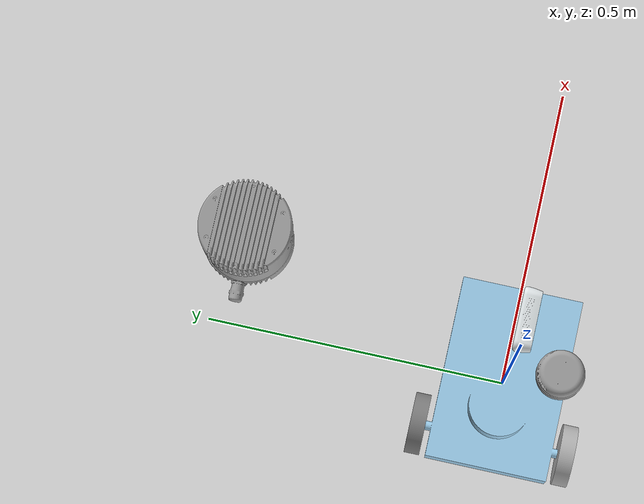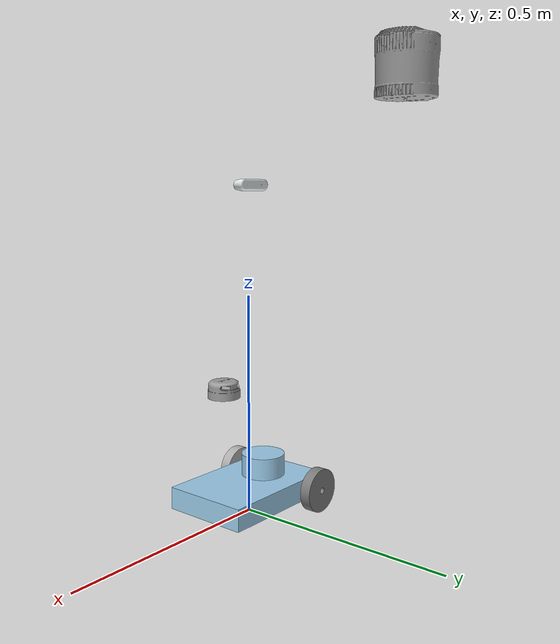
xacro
<?xml version="1.0" ?>
<robot name="wheelbot" xmlns:xacro="http://www.ros.org/wiki/xacro">

<xacro:include filename="$(find wheelbot_description)/urdf/materials.xacro" />
<xacro:include filename="$(find wheelbot_description)/urdf/wheelbot.trans" />
<link name="base_link">
  <inertial>
    <origin xyz="0.00016189497531952227 0.1633444525971556 0.4814496560775765" rpy="0 0 0"/>
    <mass value="59.27638632244937"/>
    <inertia ixx="4.720672" iyy="5.782044" izz="3.655411" ixy="-0.001302" iyz="-0.338954" ixz="0.001314"/>
  </inertial>
  <visual>
    <origin xyz="0 0 0" rpy="0 0 0"/>
    <geometry>
      <mesh filename="package://wheelbot_description/meshes/base_link.stl" scale="0.001 0.001 0.001"/>
    </geometry>
    <material name="opaque157207237"/>
  </visual>
  <collision>
    <origin xyz="0 0 0" rpy="0 0 0"/>
    <geometry>
      <mesh filename="package://wheelbot_description/meshes/base_link.stl" scale="0.001 0.001 0.001"/>
    </geometry>
  </collision>
</link>

<link name="right_wheel_1">
  <inertial>
    <origin xyz="-0.03302712931683613 -8.171934190864816e-07 2.857522727592321e-06" rpy="0 0 0"/>
    <mass value="4.057588262006871"/>
    <inertia ixx="0.018746" iyy="0.010112" izz="0.010112" ixy="0.0" iyz="-0.0" ixz="0.0"/>
  </inertial>
  <visual>
    <origin xyz="0.20365 -0.025 -0.08635" rpy="0 0 0"/>
    <geometry>
      <mesh filename="package://wheelbot_description/meshes/right_wheel_1.stl" scale="0.001 0.001 0.001"/>
    </geometry>
    <material name="silver_default"/>
  </visual>
  <collision>
    <origin xyz="0.20365 -0.025 -0.08635" rpy="0 0 0"/>
    <geometry>
      <mesh filename="package://wheelbot_description/meshes/right_wheel_1.stl" scale="0.001 0.001 0.001"/>
    </geometry>
  </collision>
</link>

<link name="left_wheel_1">
  <inertial>
    <origin xyz="0.03134010792131103 -2.2049547375377343e-06 -2.3096051485343994e-06" rpy="0 0 0"/>
    <mass value="4.057588262006871"/>
    <inertia ixx="0.018746" iyy="0.010179" izz="0.010179" ixy="-0.0" iyz="-0.0" ixz="0.0"/>
  </inertial>
  <visual>
    <origin xyz="-0.21 -0.025 -0.08635" rpy="0 0 0"/>
    <geometry>
      <mesh filename="package://wheelbot_description/meshes/left_wheel_1.stl" scale="0.001 0.001 0.001"/>
    </geometry>
    <material name="opaque127127127"/>
  </visual>
  <collision>
    <origin xyz="-0.21 -0.025 -0.08635" rpy="0 0 0"/>
    <geometry>
      <mesh filename="package://wheelbot_description/meshes/left_wheel_1.stl" scale="0.001 0.001 0.001"/>
    </geometry>
  </collision>
</link>

<link name="caster_1">
  <inertial>
    <origin xyz="0.03640734431965448 -0.022805237611954632 -0.08969759421875342" rpy="0 0 0"/>
    <mass value="2.7443676226430105"/>
    <inertia ixx="0.005721" iyy="0.00677" izz="0.003612" ixy="0.001317" iyz="-0.000555" ixz="0.000911"/>
  </inertial>
  <visual>
    <origin xyz="-0.0 -0.33 -0.16535" rpy="0 0 0"/>
    <geometry>
      <mesh filename="package://wheelbot_description/meshes/caster_1.stl" scale="0.001 0.001 0.001"/>
    </geometry>
    <material name="opaque192192192"/>
  </visual>
  <collision>
    <origin xyz="-0.0 -0.33 -0.16535" rpy="0 0 0"/>
    <geometry>
      <mesh filename="package://wheelbot_description/meshes/caster_1.stl" scale="0.001 0.001 0.001"/>
    </geometry>
  </collision>
</link>

<link name="RPLiDAR_v1_1">
  <inertial>
    <origin xyz="2.2997331597459713e-05 -0.0009682652866699337 0.018644116748628536" rpy="0 0 0"/>
    <mass value="1.2800671745342438"/>
    <inertia ixx="0.000583" iyy="0.000583" izz="0.000847" ixy="-0.0" iyz="1.4e-05" ixz="-0.0"/>
  </inertial>
  <visual>
    <origin xyz="0.0 0.077 -0.25535" rpy="0 0 0"/>
    <geometry>
      <mesh filename="package://wheelbot_description/meshes/RPLiDAR_v1_1.stl" scale="0.001 0.001 0.001"/>
    </geometry>
    <material name="_"/>
  </visual>
  <collision>
    <origin xyz="0.0 0.077 -0.25535" rpy="0 0 0"/>
    <geometry>
      <mesh filename="package://wheelbot_description/meshes/RPLiDAR_v1_1.stl" scale="0.001 0.001 0.001"/>
    </geometry>
  </collision>
</link>

<link name="Intel_Realsense_D435_1">
  <inertial>
    <origin xyz="-5.299270511519333e-07 0.012729830691673744 -0.025048200076701943" rpy="0 0 0"/>
    <mass value="0.3783774808035141"/>
    <inertia ixx="3.5e-05" iyy="0.000238" izz="0.00024" ixy="0.0" iyz="-0.0" ixz="0.0"/>
  </inertial>
  <visual>
    <origin xyz="1e-06 0.0045 -0.76835" rpy="0 0 0"/>
    <geometry>
      <mesh filename="package://wheelbot_description/meshes/Intel_Realsense_D435_1.stl" scale="0.001 0.001 0.001"/>
    </geometry>
    <material name="opaque229235237"/>
  </visual>
  <collision>
    <origin xyz="1e-06 0.0045 -0.76835" rpy="0 0 0"/>
    <geometry>
      <mesh filename="package://wheelbot_description/meshes/Intel_Realsense_D435_1.stl" scale="0.001 0.001 0.001"/>
    </geometry>
  </collision>
</link>

<link name="HESAI_LiDAR_1">
  <inertial>
    <origin xyz="0.0 -0.3845 -0.89835" rpy="0 0 0"/>
    <mass value="0.0"/>
    <inertia ixx="0.0" iyy="0.0" izz="0.0" ixy="0.0" iyz="0.0" ixz="0.0"/>
  </inertial>
  <visual>
    <origin xyz="0.0 -0.3845 -0.89835" rpy="0 0 0"/>
    <geometry>
      <mesh filename="package://wheelbot_description/meshes/HESAI_LiDAR_1.stl" scale="0.001 0.001 0.001"/>
    </geometry>
    <material name="_"/>
  </visual>
  <collision>
    <origin xyz="0.0 -0.3845 -0.89835" rpy="0 0 0"/>
    <geometry>
      <mesh filename="package://wheelbot_description/meshes/HESAI_LiDAR_1.stl" scale="0.001 0.001 0.001"/>
    </geometry>
  </collision>
</link>

<joint name="rev1" type="continuous">
  <origin xyz="-0.20365 0.025 0.08635" rpy="0 0 0"/>
  <parent link="base_link"/>
  <child link="right_wheel_1"/>
  <axis xyz="-1.0 0.0 0.0"/>
</joint>

<joint name="rev2" type="continuous">
  <origin xyz="0.21 0.025 0.08635" rpy="0 0 0"/>
  <parent link="base_link"/>
  <child link="left_wheel_1"/>
  <axis xyz="-1.0 0.0 0.0"/>
</joint>

<joint name="rev3" type="continuous">
  <origin xyz="0.0 0.33 0.16535" rpy="0 0 0"/>
  <parent link="base_link"/>
  <child link="caster_1"/>
  <axis xyz="0.0 0.0 1.0"/>
</joint>

<joint name="joint1" type="fixed">
  <origin xyz="0.0 -0.077 0.25535" rpy="0 0 0"/>
  <parent link="base_link"/>
  <child link="RPLiDAR_v1_1"/>
</joint>

<joint name="joint2" type="fixed">
  <origin xyz="-1e-06 -0.0045 0.76835" rpy="0 0 0"/>
  <parent link="base_link"/>
  <child link="Intel_Realsense_D435_1"/>
</joint>

<joint name="joint3" type="fixed">
  <origin xyz="0.0 0.3845 0.89835" rpy="0 0 0"/>
  <parent link="base_link"/>
  <child link="HESAI_LiDAR_1"/>
</joint>

</robot>

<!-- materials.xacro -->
<robot name="wheelbot" xmlns:xacro="http://www.ros.org/wiki/xacro" >

<material name="silver_default">
  <color rgba="0.700 0.700 0.700 1.000"/>
</material>
<material name="opaque157207237">
  <color rgba="0.615686274509804 0.8117647058823529 0.9294117647058824 1.0"/>
</material>
<material name="opaque192192192">
  <color rgba="0.7529411764705882 0.7529411764705882 0.7529411764705882 1.0"/>
</material>
<material name="opaque127127127">
  <color rgba="0.4980392156862745 0.4980392156862745 0.4980392156862745 1.0"/>
</material>
<material name="_">
  <color rgba="0.6274509803921569 0.6274509803921569 0.6274509803921569 1.0"/>
</material>
<material name="opaque229235237">
  <color rgba="0.8980392156862745 0.9215686274509803 0.9294117647058824 1.0"/>
</material>

</robot>
